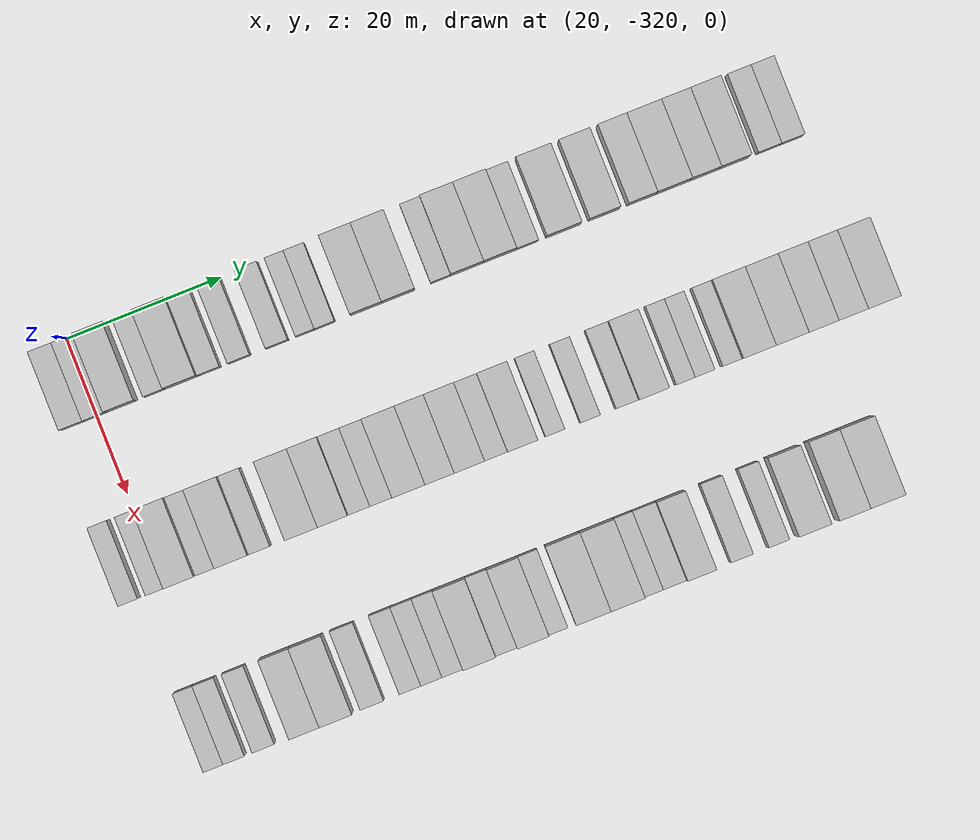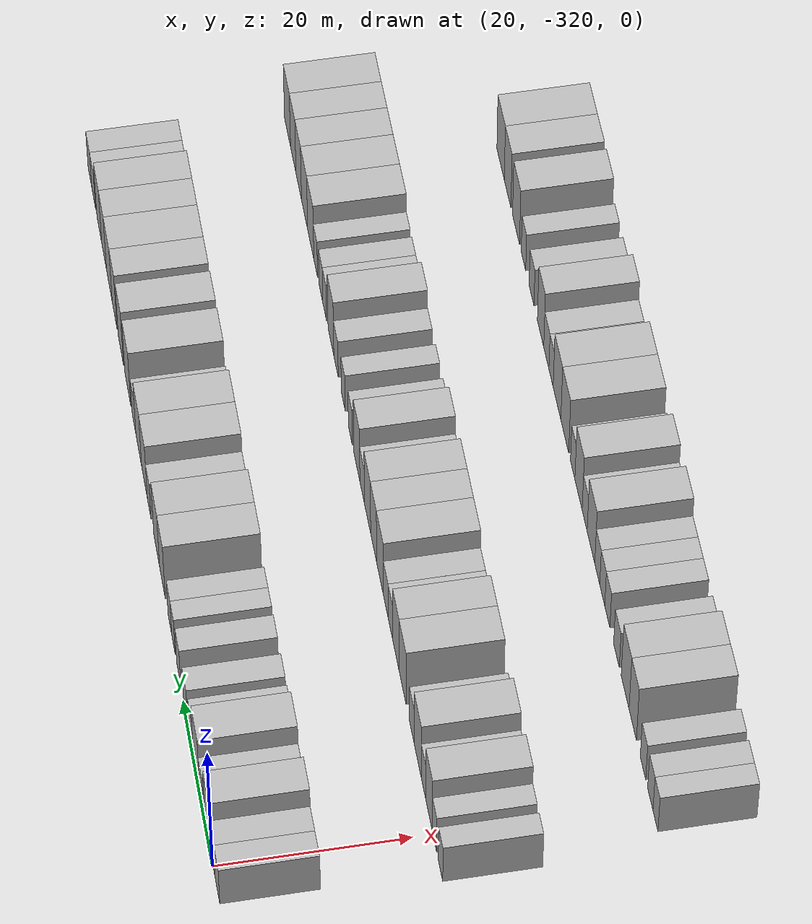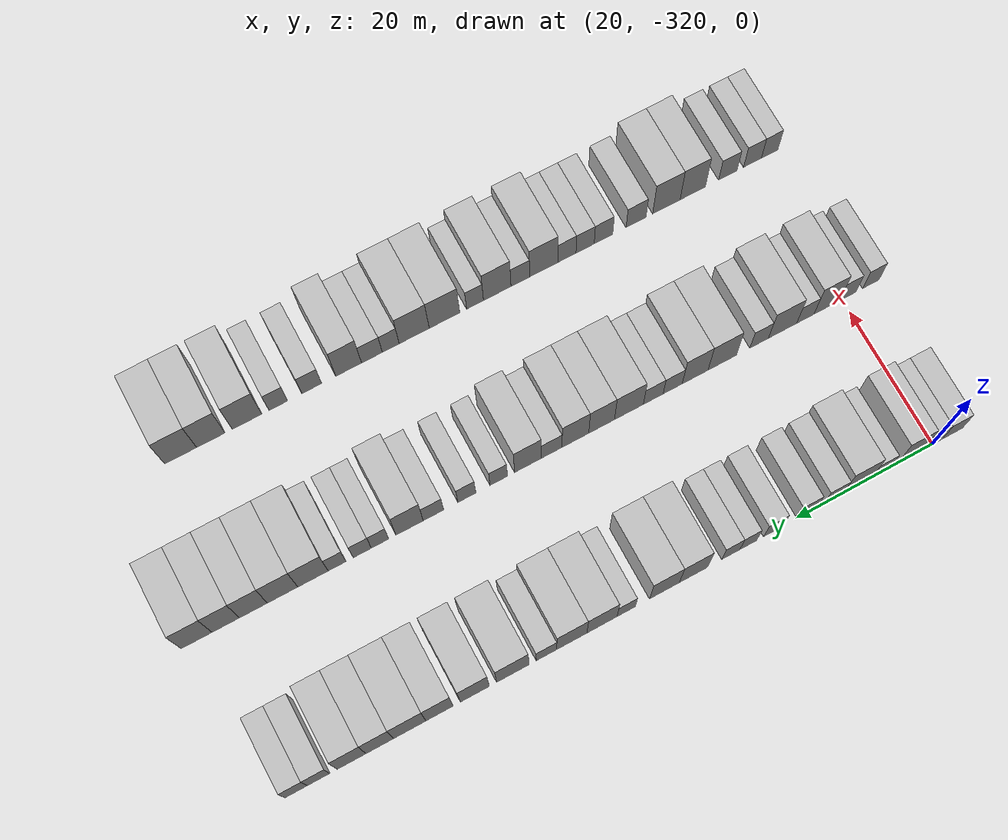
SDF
<sdf version="1.6">
 <world name="default">
  <model name="building_15">
   <static>1</static>
   <pose>25.0000 -322.9379 0 0.000000 0.000000 0.000000</pose>
   <link name="link">
    <pose>0 0 3.00 0 0 0</pose>
    <collision name="collision"><geometry><box><size>10.0000 2.9943 6.0000</size></box></geometry></collision>
    <visual name="visual">
     <cast_shadows>0</cast_shadows>
     <geometry><box><size>10.0000 2.9943 6.0000</size></box></geometry>
     <material>
      <script>
       <uri>model://HANNAS_wall/materials/scripts</uri>
       <uri>model://HANNAS_wall/materials/textures</uri>
       <name>vrc/HANNAS_wall</name>
      </script>
     </material>
    </visual>
   </link>
  </model>
  <model name="building_16">
   <static>1</static>
   <pose>25.0000 -320.0006 0 0.000000 0.000000 0.000000</pose>
   <link name="link">
    <pose>0 0 3.00 0 0 0</pose>
    <collision name="collision"><geometry><box><size>10.0000 2.8804 6.0000</size></box></geometry></collision>
    <visual name="visual">
     <cast_shadows>0</cast_shadows>
     <geometry><box><size>10.0000 2.8804 6.0000</size></box></geometry>
     <material>
      <script>
       <uri>model://HANNAS_wall/materials/scripts</uri>
       <uri>model://HANNAS_wall/materials/textures</uri>
       <name>vrc/HANNAS_wall</name>
      </script>
     </material>
    </visual>
   </link>
  </model>
  <model name="building_17">
   <static>1</static>
   <pose>25.0000 -316.6251 0 0.000000 0.000000 0.000000</pose>
   <link name="link">
    <pose>0 0 4.50 0 0 0</pose>
    <collision name="collision"><geometry><box><size>10.0000 3.8706 9.0000</size></box></geometry></collision>
    <visual name="visual">
     <cast_shadows>0</cast_shadows>
     <geometry><box><size>10.0000 3.8706 9.0000</size></box></geometry>
     <material>
      <script>
       <uri>model://HANNAS_wall/materials/scripts</uri>
       <uri>model://HANNAS_wall/materials/textures</uri>
       <name>vrc/HANNAS_wall</name>
      </script>
     </material>
    </visual>
   </link>
  </model>
  <model name="building_18">
   <static>1</static>
   <pose>25.0000 -312.3613 0 0.000000 0.000000 0.000000</pose>
   <link name="link">
    <pose>0 0 3.00 0 0 0</pose>
    <collision name="collision"><geometry><box><size>10.0000 2.6570 6.0000</size></box></geometry></collision>
    <visual name="visual">
     <cast_shadows>0</cast_shadows>
     <geometry><box><size>10.0000 2.6570 6.0000</size></box></geometry>
     <material>
      <script>
       <uri>model://HANNAS_wall/materials/scripts</uri>
       <uri>model://HANNAS_wall/materials/textures</uri>
       <name>vrc/HANNAS_wall</name>
      </script>
     </material>
    </visual>
   </link>
  </model>
  <model name="building_19">
   <static>1</static>
   <pose>25.0000 -308.9249 0 0.000000 0.000000 0.000000</pose>
   <link name="link">
    <pose>0 0 4.50 0 0 0</pose>
    <collision name="collision"><geometry><box><size>10.0000 4.2157 9.0000</size></box></geometry></collision>
    <visual name="visual">
     <cast_shadows>0</cast_shadows>
     <geometry><box><size>10.0000 4.2157 9.0000</size></box></geometry>
     <material>
      <script>
       <uri>model://HANNAS_wall/materials/scripts</uri>
       <uri>model://HANNAS_wall/materials/textures</uri>
       <name>vrc/HANNAS_wall</name>
      </script>
     </material>
    </visual>
   </link>
  </model>
  <model name="building_20">
   <static>1</static>
   <pose>25.0000 -305.3701 0 0.000000 0.000000 0.000000</pose>
   <link name="link">
    <pose>0 0 3.00 0 0 0</pose>
    <collision name="collision"><geometry><box><size>10.0000 2.8938 6.0000</size></box></geometry></collision>
    <visual name="visual">
     <cast_shadows>0</cast_shadows>
     <geometry><box><size>10.0000 2.8938 6.0000</size></box></geometry>
     <material>
      <script>
       <uri>model://HANNAS_wall/materials/scripts</uri>
       <uri>model://HANNAS_wall/materials/textures</uri>
       <name>vrc/HANNAS_wall</name>
      </script>
     </material>
    </visual>
   </link>
  </model>
  <model name="building_21">
   <static>1</static>
   <pose>25.0000 -301.4968 0 0.000000 0.000000 0.000000</pose>
   <link name="link">
    <pose>0 0 3.00 0 0 0</pose>
    <collision name="collision"><geometry><box><size>10.0000 2.8527 6.0000</size></box></geometry></collision>
    <visual name="visual">
     <cast_shadows>0</cast_shadows>
     <geometry><box><size>10.0000 2.8527 6.0000</size></box></geometry>
     <material>
      <script>
       <uri>model://HANNAS_wall/materials/scripts</uri>
       <uri>model://HANNAS_wall/materials/textures</uri>
       <name>vrc/HANNAS_wall</name>
      </script>
     </material>
    </visual>
   </link>
  </model>
  <model name="building_22">
   <static>1</static>
   <pose>25.0000 -296.6510 0 0.000000 0.000000 0.000000</pose>
   <link name="link">
    <pose>0 0 3.00 0 0 0</pose>
    <collision name="collision"><geometry><box><size>10.0000 2.8390 6.0000</size></box></geometry></collision>
    <visual name="visual">
     <cast_shadows>0</cast_shadows>
     <geometry><box><size>10.0000 2.8390 6.0000</size></box></geometry>
     <material>
      <script>
       <uri>model://HANNAS_wall/materials/scripts</uri>
       <uri>model://HANNAS_wall/materials/textures</uri>
       <name>vrc/HANNAS_wall</name>
      </script>
     </material>
    </visual>
   </link>
  </model>
  <model name="building_23">
   <static>1</static>
   <pose>25.0000 -293.0241 0 0.000000 0.000000 0.000000</pose>
   <link name="link">
    <pose>0 0 3.00 0 0 0</pose>
    <collision name="collision"><geometry><box><size>10.0000 2.4147 6.0000</size></box></geometry></collision>
    <visual name="visual">
     <cast_shadows>0</cast_shadows>
     <geometry><box><size>10.0000 2.4147 6.0000</size></box></geometry>
     <material>
      <script>
       <uri>model://HANNAS_wall/materials/scripts</uri>
       <uri>model://HANNAS_wall/materials/textures</uri>
       <name>vrc/HANNAS_wall</name>
      </script>
     </material>
    </visual>
   </link>
  </model>
  <model name="building_24">
   <static>1</static>
   <pose>25.0000 -290.5243 0 0.000000 0.000000 0.000000</pose>
   <link name="link">
    <pose>0 0 3.00 0 0 0</pose>
    <collision name="collision"><geometry><box><size>10.0000 2.5849 6.0000</size></box></geometry></collision>
    <visual name="visual">
     <cast_shadows>0</cast_shadows>
     <geometry><box><size>10.0000 2.5849 6.0000</size></box></geometry>
     <material>
      <script>
       <uri>model://HANNAS_wall/materials/scripts</uri>
       <uri>model://HANNAS_wall/materials/textures</uri>
       <name>vrc/HANNAS_wall</name>
      </script>
     </material>
    </visual>
   </link>
  </model>
  <model name="building_25">
   <static>1</static>
   <pose>25.0000 -285.2154 0 0.000000 0.000000 0.000000</pose>
   <link name="link">
    <pose>0 0 4.50 0 0 0</pose>
    <collision name="collision"><geometry><box><size>10.0000 4.0328 9.0000</size></box></geometry></collision>
    <visual name="visual">
     <cast_shadows>0</cast_shadows>
     <geometry><box><size>10.0000 4.0328 9.0000</size></box></geometry>
     <material>
      <script>
       <uri>model://HANNAS_wall/materials/scripts</uri>
       <uri>model://HANNAS_wall/materials/textures</uri>
       <name>vrc/HANNAS_wall</name>
      </script>
     </material>
    </visual>
   </link>
  </model>
  <model name="building_26">
   <static>1</static>
   <pose>25.0000 -281.0888 0 0.000000 0.000000 0.000000</pose>
   <link name="link">
    <pose>0 0 4.50 0 0 0</pose>
    <collision name="collision"><geometry><box><size>10.0000 4.2205 9.0000</size></box></geometry></collision>
    <visual name="visual">
     <cast_shadows>0</cast_shadows>
     <geometry><box><size>10.0000 4.2205 9.0000</size></box></geometry>
     <material>
      <script>
       <uri>model://HANNAS_wall/materials/scripts</uri>
       <uri>model://HANNAS_wall/materials/textures</uri>
       <name>vrc/HANNAS_wall</name>
      </script>
     </material>
    </visual>
   </link>
  </model>
  <model name="building_27">
   <static>1</static>
   <pose>25.0000 -275.6913 0 0.000000 0.000000 0.000000</pose>
   <link name="link">
    <pose>0 0 3.00 0 0 0</pose>
    <collision name="collision"><geometry><box><size>10.0000 2.5745 6.0000</size></box></geometry></collision>
    <visual name="visual">
     <cast_shadows>0</cast_shadows>
     <geometry><box><size>10.0000 2.5745 6.0000</size></box></geometry>
     <material>
      <script>
       <uri>model://HANNAS_wall/materials/scripts</uri>
       <uri>model://HANNAS_wall/materials/textures</uri>
       <name>vrc/HANNAS_wall</name>
      </script>
     </material>
    </visual>
   </link>
  </model>
  <model name="building_28">
   <static>1</static>
   <pose>25.0000 -272.3003 0 0.000000 0.000000 0.000000</pose>
   <link name="link">
    <pose>0 0 4.50 0 0 0</pose>
    <collision name="collision"><geometry><box><size>10.0000 4.2075 9.0000</size></box></geometry></collision>
    <visual name="visual">
     <cast_shadows>0</cast_shadows>
     <geometry><box><size>10.0000 4.2075 9.0000</size></box></geometry>
     <material>
      <script>
       <uri>model://HANNAS_wall/materials/scripts</uri>
       <uri>model://HANNAS_wall/materials/textures</uri>
       <name>vrc/HANNAS_wall</name>
      </script>
     </material>
    </visual>
   </link>
  </model>
  <model name="building_29">
   <static>1</static>
   <pose>25.0000 -268.0924 0 0.000000 0.000000 0.000000</pose>
   <link name="link">
    <pose>0 0 4.50 0 0 0</pose>
    <collision name="collision"><geometry><box><size>10.0000 4.2083 9.0000</size></box></geometry></collision>
    <visual name="visual">
     <cast_shadows>0</cast_shadows>
     <geometry><box><size>10.0000 4.2083 9.0000</size></box></geometry>
     <material>
      <script>
       <uri>model://HANNAS_wall/materials/scripts</uri>
       <uri>model://HANNAS_wall/materials/textures</uri>
       <name>vrc/HANNAS_wall</name>
      </script>
     </material>
    </visual>
   </link>
  </model>
  <model name="building_30">
   <static>1</static>
   <pose>25.0000 -264.5760 0 0.000000 0.000000 0.000000</pose>
   <link name="link">
    <pose>0 0 3.00 0 0 0</pose>
    <collision name="collision"><geometry><box><size>10.0000 2.8246 6.0000</size></box></geometry></collision>
    <visual name="visual">
     <cast_shadows>0</cast_shadows>
     <geometry><box><size>10.0000 2.8246 6.0000</size></box></geometry>
     <material>
      <script>
       <uri>model://HANNAS_wall/materials/scripts</uri>
       <uri>model://HANNAS_wall/materials/textures</uri>
       <name>vrc/HANNAS_wall</name>
      </script>
     </material>
    </visual>
   </link>
  </model>
  <model name="building_31">
   <static>1</static>
   <pose>25.0000 -259.9364 0 0.000000 0.000000 0.000000</pose>
   <link name="link">
    <pose>0 0 4.50 0 0 0</pose>
    <collision name="collision"><geometry><box><size>10.0000 4.4545 9.0000</size></box></geometry></collision>
    <visual name="visual">
     <cast_shadows>0</cast_shadows>
     <geometry><box><size>10.0000 4.4545 9.0000</size></box></geometry>
     <material>
      <script>
       <uri>model://HANNAS_wall/materials/scripts</uri>
       <uri>model://HANNAS_wall/materials/textures</uri>
       <name>vrc/HANNAS_wall</name>
      </script>
     </material>
    </visual>
   </link>
  </model>
  <model name="building_32">
   <static>1</static>
   <pose>25.0000 -254.7309 0 0.000000 0.000000 0.000000</pose>
   <link name="link">
    <pose>0 0 4.50 0 0 0</pose>
    <collision name="collision"><geometry><box><size>10.0000 3.9564 9.0000</size></box></geometry></collision>
    <visual name="visual">
     <cast_shadows>0</cast_shadows>
     <geometry><box><size>10.0000 3.9564 9.0000</size></box></geometry>
     <material>
      <script>
       <uri>model://HANNAS_wall/materials/scripts</uri>
       <uri>model://HANNAS_wall/materials/textures</uri>
       <name>vrc/HANNAS_wall</name>
      </script>
     </material>
    </visual>
   </link>
  </model>
  <model name="building_33">
   <static>1</static>
   <pose>25.0000 -249.9148 0 0.000000 0.000000 0.000000</pose>
   <link name="link">
    <pose>0 0 4.50 0 0 0</pose>
    <collision name="collision"><geometry><box><size>10.0000 3.6759 9.0000</size></box></geometry></collision>
    <visual name="visual">
     <cast_shadows>0</cast_shadows>
     <geometry><box><size>10.0000 3.6759 9.0000</size></box></geometry>
     <material>
      <script>
       <uri>model://HANNAS_wall/materials/scripts</uri>
       <uri>model://HANNAS_wall/materials/textures</uri>
       <name>vrc/HANNAS_wall</name>
      </script>
     </material>
    </visual>
   </link>
  </model>
  <model name="building_34">
   <static>1</static>
   <pose>25.0000 -245.8688 0 0.000000 0.000000 0.000000</pose>
   <link name="link">
    <pose>0 0 4.50 0 0 0</pose>
    <collision name="collision"><geometry><box><size>10.0000 4.4161 9.0000</size></box></geometry></collision>
    <visual name="visual">
     <cast_shadows>0</cast_shadows>
     <geometry><box><size>10.0000 4.4161 9.0000</size></box></geometry>
     <material>
      <script>
       <uri>model://HANNAS_wall/materials/scripts</uri>
       <uri>model://HANNAS_wall/materials/textures</uri>
       <name>vrc/HANNAS_wall</name>
      </script>
     </material>
    </visual>
   </link>
  </model>
  <model name="building_35">
   <static>1</static>
   <pose>25.0000 -241.8168 0 0.000000 0.000000 0.000000</pose>
   <link name="link">
    <pose>0 0 4.50 0 0 0</pose>
    <collision name="collision"><geometry><box><size>10.0000 3.6878 9.0000</size></box></geometry></collision>
    <visual name="visual">
     <cast_shadows>0</cast_shadows>
     <geometry><box><size>10.0000 3.6878 9.0000</size></box></geometry>
     <material>
      <script>
       <uri>model://HANNAS_wall/materials/scripts</uri>
       <uri>model://HANNAS_wall/materials/textures</uri>
       <name>vrc/HANNAS_wall</name>
      </script>
     </material>
    </visual>
   </link>
  </model>
  <model name="building_36">
   <static>1</static>
   <pose>25.0000 -238.0493 0 0.000000 0.000000 0.000000</pose>
   <link name="link">
    <pose>0 0 4.50 0 0 0</pose>
    <collision name="collision"><geometry><box><size>10.0000 3.8472 9.0000</size></box></geometry></collision>
    <visual name="visual">
     <cast_shadows>0</cast_shadows>
     <geometry><box><size>10.0000 3.8472 9.0000</size></box></geometry>
     <material>
      <script>
       <uri>model://HANNAS_wall/materials/scripts</uri>
       <uri>model://HANNAS_wall/materials/textures</uri>
       <name>vrc/HANNAS_wall</name>
      </script>
     </material>
    </visual>
   </link>
  </model>
  <model name="building_37">
   <static>1</static>
   <pose>25.0000 -233.6290 0 0.000000 0.000000 0.000000</pose>
   <link name="link">
    <pose>0 0 3.00 0 0 0</pose>
    <collision name="collision"><geometry><box><size>10.0000 2.9935 6.0000</size></box></geometry></collision>
    <visual name="visual">
     <cast_shadows>0</cast_shadows>
     <geometry><box><size>10.0000 2.9935 6.0000</size></box></geometry>
     <material>
      <script>
       <uri>model://HANNAS_wall/materials/scripts</uri>
       <uri>model://HANNAS_wall/materials/textures</uri>
       <name>vrc/HANNAS_wall</name>
      </script>
     </material>
    </visual>
   </link>
  </model>
  <model name="building_38">
   <static>1</static>
   <pose>25.0000 -230.6580 0 0.000000 0.000000 0.000000</pose>
   <link name="link">
    <pose>0 0 3.00 0 0 0</pose>
    <collision name="collision"><geometry><box><size>10.0000 2.9485 6.0000</size></box></geometry></collision>
    <visual name="visual">
     <cast_shadows>0</cast_shadows>
     <geometry><box><size>10.0000 2.9485 6.0000</size></box></geometry>
     <material>
      <script>
       <uri>model://HANNAS_wall/materials/scripts</uri>
       <uri>model://HANNAS_wall/materials/textures</uri>
       <name>vrc/HANNAS_wall</name>
      </script>
     </material>
    </visual>
   </link>
  </model>
  <model name="building_199">
   <static>1</static>
   <pose>47.0000 -324.3267 0 0.000000 0.000000 0.000000</pose>
   <link name="link">
    <pose>0 0 3.00 0 0 0</pose>
    <collision name="collision"><geometry><box><size>10.0000 2.4897 6.0000</size></box></geometry></collision>
    <visual name="visual">
     <cast_shadows>0</cast_shadows>
     <geometry><box><size>10.0000 2.4897 6.0000</size></box></geometry>
     <material>
      <script>
       <uri>model://HANNAS_wall/materials/scripts</uri>
       <uri>model://HANNAS_wall/materials/textures</uri>
       <name>vrc/HANNAS_wall</name>
      </script>
     </material>
    </visual>
   </link>
  </model>
  <model name="building_200">
   <static>1</static>
   <pose>47.0000 -320.8502 0 0.000000 0.000000 0.000000</pose>
   <link name="link">
    <pose>0 0 3.00 0 0 0</pose>
    <collision name="collision"><geometry><box><size>10.0000 2.4633 6.0000</size></box></geometry></collision>
    <visual name="visual">
     <cast_shadows>0</cast_shadows>
     <geometry><box><size>10.0000 2.4633 6.0000</size></box></geometry>
     <material>
      <script>
       <uri>model://HANNAS_wall/materials/scripts</uri>
       <uri>model://HANNAS_wall/materials/textures</uri>
       <name>vrc/HANNAS_wall</name>
      </script>
     </material>
    </visual>
   </link>
  </model>
  <model name="building_201">
   <static>1</static>
   <pose>47.0000 -317.6871 0 0.000000 0.000000 0.000000</pose>
   <link name="link">
    <pose>0 0 4.50 0 0 0</pose>
    <collision name="collision"><geometry><box><size>10.0000 3.8630 9.0000</size></box></geometry></collision>
    <visual name="visual">
     <cast_shadows>0</cast_shadows>
     <geometry><box><size>10.0000 3.8630 9.0000</size></box></geometry>
     <material>
      <script>
       <uri>model://HANNAS_wall/materials/scripts</uri>
       <uri>model://HANNAS_wall/materials/textures</uri>
       <name>vrc/HANNAS_wall</name>
      </script>
     </material>
    </visual>
   </link>
  </model>
  <model name="building_202">
   <static>1</static>
   <pose>47.0000 -314.4593 0 0.000000 0.000000 0.000000</pose>
   <link name="link">
    <pose>0 0 3.00 0 0 0</pose>
    <collision name="collision"><geometry><box><size>10.0000 2.5925 6.0000</size></box></geometry></collision>
    <visual name="visual">
     <cast_shadows>0</cast_shadows>
     <geometry><box><size>10.0000 2.5925 6.0000</size></box></geometry>
     <material>
      <script>
       <uri>model://HANNAS_wall/materials/scripts</uri>
       <uri>model://HANNAS_wall/materials/textures</uri>
       <name>vrc/HANNAS_wall</name>
      </script>
     </material>
    </visual>
   </link>
  </model>
  <model name="building_203">
   <static>1</static>
   <pose>47.0000 -311.0527 0 0.000000 0.000000 0.000000</pose>
   <link name="link">
    <pose>0 0 4.50 0 0 0</pose>
    <collision name="collision"><geometry><box><size>10.0000 4.2207 9.0000</size></box></geometry></collision>
    <visual name="visual">
     <cast_shadows>0</cast_shadows>
     <geometry><box><size>10.0000 4.2207 9.0000</size></box></geometry>
     <material>
      <script>
       <uri>model://HANNAS_wall/materials/scripts</uri>
       <uri>model://HANNAS_wall/materials/textures</uri>
       <name>vrc/HANNAS_wall</name>
      </script>
     </material>
    </visual>
   </link>
  </model>
  <model name="building_204">
   <static>1</static>
   <pose>47.0000 -307.5735 0 0.000000 0.000000 0.000000</pose>
   <link name="link">
    <pose>0 0 3.00 0 0 0</pose>
    <collision name="collision"><geometry><box><size>10.0000 2.7377 6.0000</size></box></geometry></collision>
    <visual name="visual">
     <cast_shadows>0</cast_shadows>
     <geometry><box><size>10.0000 2.7377 6.0000</size></box></geometry>
     <material>
      <script>
       <uri>model://HANNAS_wall/materials/scripts</uri>
       <uri>model://HANNAS_wall/materials/textures</uri>
       <name>vrc/HANNAS_wall</name>
      </script>
     </material>
    </visual>
   </link>
  </model>
  <model name="building_205">
   <static>1</static>
   <pose>47.0000 -302.1102 0 0.000000 0.000000 0.000000</pose>
   <link name="link">
    <pose>0 0 4.50 0 0 0</pose>
    <collision name="collision"><geometry><box><size>10.0000 4.1889 9.0000</size></box></geometry></collision>
    <visual name="visual">
     <cast_shadows>0</cast_shadows>
     <geometry><box><size>10.0000 4.1889 9.0000</size></box></geometry>
     <material>
      <script>
       <uri>model://HANNAS_wall/materials/scripts</uri>
       <uri>model://HANNAS_wall/materials/textures</uri>
       <name>vrc/HANNAS_wall</name>
      </script>
     </material>
    </visual>
   </link>
  </model>
  <model name="building_206">
   <static>1</static>
   <pose>47.0000 -298.1185 0 0.000000 0.000000 0.000000</pose>
   <link name="link">
    <pose>0 0 4.50 0 0 0</pose>
    <collision name="collision"><geometry><box><size>10.0000 3.7946 9.0000</size></box></geometry></collision>
    <visual name="visual">
     <cast_shadows>0</cast_shadows>
     <geometry><box><size>10.0000 3.7946 9.0000</size></box></geometry>
     <material>
      <script>
       <uri>model://HANNAS_wall/materials/scripts</uri>
       <uri>model://HANNAS_wall/materials/textures</uri>
       <name>vrc/HANNAS_wall</name>
      </script>
     </material>
    </visual>
   </link>
  </model>
  <model name="building_207">
   <static>1</static>
   <pose>47.0000 -294.8281 0 0.000000 0.000000 0.000000</pose>
   <link name="link">
    <pose>0 0 3.00 0 0 0</pose>
    <collision name="collision"><geometry><box><size>10.0000 2.7862 6.0000</size></box></geometry></collision>
    <visual name="visual">
     <cast_shadows>0</cast_shadows>
     <geometry><box><size>10.0000 2.7862 6.0000</size></box></geometry>
     <material>
      <script>
       <uri>model://HANNAS_wall/materials/scripts</uri>
       <uri>model://HANNAS_wall/materials/textures</uri>
       <name>vrc/HANNAS_wall</name>
      </script>
     </material>
    </visual>
   </link>
  </model>
  <model name="building_208">
   <static>1</static>
   <pose>47.0000 -291.9982 0 0.000000 0.000000 0.000000</pose>
   <link name="link">
    <pose>0 0 3.00 0 0 0</pose>
    <collision name="collision"><geometry><box><size>10.0000 2.8737 6.0000</size></box></geometry></collision>
    <visual name="visual">
     <cast_shadows>0</cast_shadows>
     <geometry><box><size>10.0000 2.8737 6.0000</size></box></geometry>
     <material>
      <script>
       <uri>model://HANNAS_wall/materials/scripts</uri>
       <uri>model://HANNAS_wall/materials/textures</uri>
       <name>vrc/HANNAS_wall</name>
      </script>
     </material>
    </visual>
   </link>
  </model>
  <model name="building_209">
   <static>1</static>
   <pose>47.0000 -288.4626 0 0.000000 0.000000 0.000000</pose>
   <link name="link">
    <pose>0 0 4.50 0 0 0</pose>
    <collision name="collision"><geometry><box><size>10.0000 4.1975 9.0000</size></box></geometry></collision>
    <visual name="visual">
     <cast_shadows>0</cast_shadows>
     <geometry><box><size>10.0000 4.1975 9.0000</size></box></geometry>
     <material>
      <script>
       <uri>model://HANNAS_wall/materials/scripts</uri>
       <uri>model://HANNAS_wall/materials/textures</uri>
       <name>vrc/HANNAS_wall</name>
      </script>
     </material>
    </visual>
   </link>
  </model>
  <model name="building_210">
   <static>1</static>
   <pose>47.0000 -284.5081 0 0.000000 0.000000 0.000000</pose>
   <link name="link">
    <pose>0 0 4.50 0 0 0</pose>
    <collision name="collision"><geometry><box><size>10.0000 3.7114 9.0000</size></box></geometry></collision>
    <visual name="visual">
     <cast_shadows>0</cast_shadows>
     <geometry><box><size>10.0000 3.7114 9.0000</size></box></geometry>
     <material>
      <script>
       <uri>model://HANNAS_wall/materials/scripts</uri>
       <uri>model://HANNAS_wall/materials/textures</uri>
       <name>vrc/HANNAS_wall</name>
      </script>
     </material>
    </visual>
   </link>
  </model>
  <model name="building_211">
   <static>1</static>
   <pose>47.0000 -280.7209 0 0.000000 0.000000 0.000000</pose>
   <link name="link">
    <pose>0 0 4.50 0 0 0</pose>
    <collision name="collision"><geometry><box><size>10.0000 3.8630 9.0000</size></box></geometry></collision>
    <visual name="visual">
     <cast_shadows>0</cast_shadows>
     <geometry><box><size>10.0000 3.8630 9.0000</size></box></geometry>
     <material>
      <script>
       <uri>model://HANNAS_wall/materials/scripts</uri>
       <uri>model://HANNAS_wall/materials/textures</uri>
       <name>vrc/HANNAS_wall</name>
      </script>
     </material>
    </visual>
   </link>
  </model>
  <model name="building_212">
   <static>1</static>
   <pose>47.0000 -277.3342 0 0.000000 0.000000 0.000000</pose>
   <link name="link">
    <pose>0 0 3.00 0 0 0</pose>
    <collision name="collision"><geometry><box><size>10.0000 2.9104 6.0000</size></box></geometry></collision>
    <visual name="visual">
     <cast_shadows>0</cast_shadows>
     <geometry><box><size>10.0000 2.9104 6.0000</size></box></geometry>
     <material>
      <script>
       <uri>model://HANNAS_wall/materials/scripts</uri>
       <uri>model://HANNAS_wall/materials/textures</uri>
       <name>vrc/HANNAS_wall</name>
      </script>
     </material>
    </visual>
   </link>
  </model>
  <model name="building_213">
   <static>1</static>
   <pose>47.0000 -273.9551 0 0.000000 0.000000 0.000000</pose>
   <link name="link">
    <pose>0 0 4.50 0 0 0</pose>
    <collision name="collision"><geometry><box><size>10.0000 3.8478 9.0000</size></box></geometry></collision>
    <visual name="visual">
     <cast_shadows>0</cast_shadows>
     <geometry><box><size>10.0000 3.8478 9.0000</size></box></geometry>
     <material>
      <script>
       <uri>model://HANNAS_wall/materials/scripts</uri>
       <uri>model://HANNAS_wall/materials/textures</uri>
       <name>vrc/HANNAS_wall</name>
      </script>
     </material>
    </visual>
   </link>
  </model>
  <model name="building_214">
   <static>1</static>
   <pose>47.0000 -269.7923 0 0.000000 0.000000 0.000000</pose>
   <link name="link">
    <pose>0 0 3.00 0 0 0</pose>
    <collision name="collision"><geometry><box><size>10.0000 2.4778 6.0000</size></box></geometry></collision>
    <visual name="visual">
     <cast_shadows>0</cast_shadows>
     <geometry><box><size>10.0000 2.4778 6.0000</size></box></geometry>
     <material>
      <script>
       <uri>model://HANNAS_wall/materials/scripts</uri>
       <uri>model://HANNAS_wall/materials/textures</uri>
       <name>vrc/HANNAS_wall</name>
      </script>
     </material>
    </visual>
   </link>
  </model>
  <model name="building_215">
   <static>1</static>
   <pose>47.0000 -265.2839 0 0.000000 0.000000 0.000000</pose>
   <link name="link">
    <pose>0 0 3.00 0 0 0</pose>
    <collision name="collision"><geometry><box><size>10.0000 2.5388 6.0000</size></box></geometry></collision>
    <visual name="visual">
     <cast_shadows>0</cast_shadows>
     <geometry><box><size>10.0000 2.5388 6.0000</size></box></geometry>
     <material>
      <script>
       <uri>model://HANNAS_wall/materials/scripts</uri>
       <uri>model://HANNAS_wall/materials/textures</uri>
       <name>vrc/HANNAS_wall</name>
      </script>
     </material>
    </visual>
   </link>
  </model>
  <model name="building_216">
   <static>1</static>
   <pose>47.0000 -260.5830 0 0.000000 0.000000 0.000000</pose>
   <link name="link">
    <pose>0 0 3.00 0 0 0</pose>
    <collision name="collision"><geometry><box><size>10.0000 2.8631 6.0000</size></box></geometry></collision>
    <visual name="visual">
     <cast_shadows>0</cast_shadows>
     <geometry><box><size>10.0000 2.8631 6.0000</size></box></geometry>
     <material>
      <script>
       <uri>model://HANNAS_wall/materials/scripts</uri>
       <uri>model://HANNAS_wall/materials/textures</uri>
       <name>vrc/HANNAS_wall</name>
      </script>
     </material>
    </visual>
   </link>
  </model>
  <model name="building_217">
   <static>1</static>
   <pose>47.0000 -257.2432 0 0.000000 0.000000 0.000000</pose>
   <link name="link">
    <pose>0 0 4.50 0 0 0</pose>
    <collision name="collision"><geometry><box><size>10.0000 3.8165 9.0000</size></box></geometry></collision>
    <visual name="visual">
     <cast_shadows>0</cast_shadows>
     <geometry><box><size>10.0000 3.8165 9.0000</size></box></geometry>
     <material>
      <script>
       <uri>model://HANNAS_wall/materials/scripts</uri>
       <uri>model://HANNAS_wall/materials/textures</uri>
       <name>vrc/HANNAS_wall</name>
      </script>
     </material>
    </visual>
   </link>
  </model>
  <model name="building_218">
   <static>1</static>
   <pose>47.0000 -253.1270 0 0.000000 0.000000 0.000000</pose>
   <link name="link">
    <pose>0 0 3.00 0 0 0</pose>
    <collision name="collision"><geometry><box><size>10.0000 2.4160 6.0000</size></box></geometry></collision>
    <visual name="visual">
     <cast_shadows>0</cast_shadows>
     <geometry><box><size>10.0000 2.4160 6.0000</size></box></geometry>
     <material>
      <script>
       <uri>model://HANNAS_wall/materials/scripts</uri>
       <uri>model://HANNAS_wall/materials/textures</uri>
       <name>vrc/HANNAS_wall</name>
      </script>
     </material>
    </visual>
   </link>
  </model>
  <model name="building_219">
   <static>1</static>
   <pose>47.0000 -250.6631 0 0.000000 0.000000 0.000000</pose>
   <link name="link">
    <pose>0 0 3.00 0 0 0</pose>
    <collision name="collision"><geometry><box><size>10.0000 2.5119 6.0000</size></box></geometry></collision>
    <visual name="visual">
     <cast_shadows>0</cast_shadows>
     <geometry><box><size>10.0000 2.5119 6.0000</size></box></geometry>
     <material>
      <script>
       <uri>model://HANNAS_wall/materials/scripts</uri>
       <uri>model://HANNAS_wall/materials/textures</uri>
       <name>vrc/HANNAS_wall</name>
      </script>
     </material>
    </visual>
   </link>
  </model>
  <model name="building_220">
   <static>1</static>
   <pose>47.0000 -247.1761 0 0.000000 0.000000 0.000000</pose>
   <link name="link">
    <pose>0 0 3.00 0 0 0</pose>
    <collision name="collision"><geometry><box><size>10.0000 2.4620 6.0000</size></box></geometry></collision>
    <visual name="visual">
     <cast_shadows>0</cast_shadows>
     <geometry><box><size>10.0000 2.4620 6.0000</size></box></geometry>
     <material>
      <script>
       <uri>model://HANNAS_wall/materials/scripts</uri>
       <uri>model://HANNAS_wall/materials/textures</uri>
       <name>vrc/HANNAS_wall</name>
      </script>
     </material>
    </visual>
   </link>
  </model>
  <model name="building_221">
   <static>1</static>
   <pose>47.0000 -243.8594 0 0.000000 0.000000 0.000000</pose>
   <link name="link">
    <pose>0 0 4.50 0 0 0</pose>
    <collision name="collision"><geometry><box><size>10.0000 4.1714 9.0000</size></box></geometry></collision>
    <visual name="visual">
     <cast_shadows>0</cast_shadows>
     <geometry><box><size>10.0000 4.1714 9.0000</size></box></geometry>
     <material>
      <script>
       <uri>model://HANNAS_wall/materials/scripts</uri>
       <uri>model://HANNAS_wall/materials/textures</uri>
       <name>vrc/HANNAS_wall</name>
      </script>
     </material>
    </visual>
   </link>
  </model>
  <model name="building_222">
   <static>1</static>
   <pose>47.0000 -239.6932 0 0.000000 0.000000 0.000000</pose>
   <link name="link">
    <pose>0 0 4.50 0 0 0</pose>
    <collision name="collision"><geometry><box><size>10.0000 4.1609 9.0000</size></box></geometry></collision>
    <visual name="visual">
     <cast_shadows>0</cast_shadows>
     <geometry><box><size>10.0000 4.1609 9.0000</size></box></geometry>
     <material>
      <script>
       <uri>model://HANNAS_wall/materials/scripts</uri>
       <uri>model://HANNAS_wall/materials/textures</uri>
       <name>vrc/HANNAS_wall</name>
      </script>
     </material>
    </visual>
   </link>
  </model>
  <model name="building_223">
   <static>1</static>
   <pose>47.0000 -235.7172 0 0.000000 0.000000 0.000000</pose>
   <link name="link">
    <pose>0 0 4.50 0 0 0</pose>
    <collision name="collision"><geometry><box><size>10.0000 3.7911 9.0000</size></box></geometry></collision>
    <visual name="visual">
     <cast_shadows>0</cast_shadows>
     <geometry><box><size>10.0000 3.7911 9.0000</size></box></geometry>
     <material>
      <script>
       <uri>model://HANNAS_wall/materials/scripts</uri>
       <uri>model://HANNAS_wall/materials/textures</uri>
       <name>vrc/HANNAS_wall</name>
      </script>
     </material>
    </visual>
   </link>
  </model>
  <model name="building_224">
   <static>1</static>
   <pose>47.0000 -231.9564 0 0.000000 0.000000 0.000000</pose>
   <link name="link">
    <pose>0 0 4.50 0 0 0</pose>
    <collision name="collision"><geometry><box><size>10.0000 3.7305 9.0000</size></box></geometry></collision>
    <visual name="visual">
     <cast_shadows>0</cast_shadows>
     <geometry><box><size>10.0000 3.7305 9.0000</size></box></geometry>
     <material>
      <script>
       <uri>model://HANNAS_wall/materials/scripts</uri>
       <uri>model://HANNAS_wall/materials/textures</uri>
       <name>vrc/HANNAS_wall</name>
      </script>
     </material>
    </visual>
   </link>
  </model>
  <model name="building_225">
   <static>1</static>
   <pose>47.0000 -228.0120 0 0.000000 0.000000 0.000000</pose>
   <link name="link">
    <pose>0 0 4.50 0 0 0</pose>
    <collision name="collision"><geometry><box><size>10.0000 4.1583 9.0000</size></box></geometry></collision>
    <visual name="visual">
     <cast_shadows>0</cast_shadows>
     <geometry><box><size>10.0000 4.1583 9.0000</size></box></geometry>
     <material>
      <script>
       <uri>model://HANNAS_wall/materials/scripts</uri>
       <uri>model://HANNAS_wall/materials/textures</uri>
       <name>vrc/HANNAS_wall</name>
      </script>
     </material>
    </visual>
   </link>
  </model>
  <model name="building_381">
   <static>1</static>
   <pose>69.0000 -322.1657 0 0.000000 0.000000 0.000000</pose>
   <link name="link">
    <pose>0 0 3.00 0 0 0</pose>
    <collision name="collision"><geometry><box><size>10.0000 2.5222 6.0000</size></box></geometry></collision>
    <visual name="visual">
     <cast_shadows>0</cast_shadows>
     <geometry><box><size>10.0000 2.5222 6.0000</size></box></geometry>
     <material>
      <script>
       <uri>model://HANNAS_wall/materials/scripts</uri>
       <uri>model://HANNAS_wall/materials/textures</uri>
       <name>vrc/HANNAS_wall</name>
      </script>
     </material>
    </visual>
   </link>
  </model>
  <model name="building_382">
   <static>1</static>
   <pose>69.0000 -319.5432 0 0.000000 0.000000 0.000000</pose>
   <link name="link">
    <pose>0 0 3.00 0 0 0</pose>
    <collision name="collision"><geometry><box><size>10.0000 2.7229 6.0000</size></box></geometry></collision>
    <visual name="visual">
     <cast_shadows>0</cast_shadows>
     <geometry><box><size>10.0000 2.7229 6.0000</size></box></geometry>
     <material>
      <script>
       <uri>model://HANNAS_wall/materials/scripts</uri>
       <uri>model://HANNAS_wall/materials/textures</uri>
       <name>vrc/HANNAS_wall</name>
      </script>
     </material>
    </visual>
   </link>
  </model>
  <model name="building_383">
   <static>1</static>
   <pose>69.0000 -315.7801 0 0.000000 0.000000 0.000000</pose>
   <link name="link">
    <pose>0 0 3.00 0 0 0</pose>
    <collision name="collision"><geometry><box><size>10.0000 2.8032 6.0000</size></box></geometry></collision>
    <visual name="visual">
     <cast_shadows>0</cast_shadows>
     <geometry><box><size>10.0000 2.8032 6.0000</size></box></geometry>
     <material>
      <script>
       <uri>model://HANNAS_wall/materials/scripts</uri>
       <uri>model://HANNAS_wall/materials/textures</uri>
       <name>vrc/HANNAS_wall</name>
      </script>
     </material>
    </visual>
   </link>
  </model>
  <model name="building_384">
   <static>1</static>
   <pose>69.0000 -310.4609 0 0.000000 0.000000 0.000000</pose>
   <link name="link">
    <pose>0 0 4.50 0 0 0</pose>
    <collision name="collision"><geometry><box><size>10.0000 3.8353 9.0000</size></box></geometry></collision>
    <visual name="visual">
     <cast_shadows>0</cast_shadows>
     <geometry><box><size>10.0000 3.8353 9.0000</size></box></geometry>
     <material>
      <script>
       <uri>model://HANNAS_wall/materials/scripts</uri>
       <uri>model://HANNAS_wall/materials/textures</uri>
       <name>vrc/HANNAS_wall</name>
      </script>
     </material>
    </visual>
   </link>
  </model>
  <model name="building_385">
   <static>1</static>
   <pose>69.0000 -306.4733 0 0.000000 0.000000 0.000000</pose>
   <link name="link">
    <pose>0 0 4.50 0 0 0</pose>
    <collision name="collision"><geometry><box><size>10.0000 4.1400 9.0000</size></box></geometry></collision>
    <visual name="visual">
     <cast_shadows>0</cast_shadows>
     <geometry><box><size>10.0000 4.1400 9.0000</size></box></geometry>
     <material>
      <script>
       <uri>model://HANNAS_wall/materials/scripts</uri>
       <uri>model://HANNAS_wall/materials/textures</uri>
       <name>vrc/HANNAS_wall</name>
      </script>
     </material>
    </visual>
   </link>
  </model>
  <model name="building_386">
   <static>1</static>
   <pose>69.0000 -301.9101 0 0.000000 0.000000 0.000000</pose>
   <link name="link">
    <pose>0 0 3.00 0 0 0</pose>
    <collision name="collision"><geometry><box><size>10.0000 2.9863 6.0000</size></box></geometry></collision>
    <visual name="visual">
     <cast_shadows>0</cast_shadows>
     <geometry><box><size>10.0000 2.9863 6.0000</size></box></geometry>
     <material>
      <script>
       <uri>model://HANNAS_wall/materials/scripts</uri>
       <uri>model://HANNAS_wall/materials/textures</uri>
       <name>vrc/HANNAS_wall</name>
      </script>
     </material>
    </visual>
   </link>
  </model>
  <model name="building_387">
   <static>1</static>
   <pose>69.0000 -297.0392 0 0.000000 0.000000 0.000000</pose>
   <link name="link">
    <pose>0 0 3.00 0 0 0</pose>
    <collision name="collision"><geometry><box><size>10.0000 2.7554 6.0000</size></box></geometry></collision>
    <visual name="visual">
     <cast_shadows>0</cast_shadows>
     <geometry><box><size>10.0000 2.7554 6.0000</size></box></geometry>
     <material>
      <script>
       <uri>model://HANNAS_wall/materials/scripts</uri>
       <uri>model://HANNAS_wall/materials/textures</uri>
       <name>vrc/HANNAS_wall</name>
      </script>
     </material>
    </visual>
   </link>
  </model>
  <model name="building_388">
   <static>1</static>
   <pose>69.0000 -294.3094 0 0.000000 0.000000 0.000000</pose>
   <link name="link">
    <pose>0 0 3.00 0 0 0</pose>
    <collision name="collision"><geometry><box><size>10.0000 2.7043 6.0000</size></box></geometry></collision>
    <visual name="visual">
     <cast_shadows>0</cast_shadows>
     <geometry><box><size>10.0000 2.7043 6.0000</size></box></geometry>
     <material>
      <script>
       <uri>model://HANNAS_wall/materials/scripts</uri>
       <uri>model://HANNAS_wall/materials/textures</uri>
       <name>vrc/HANNAS_wall</name>
      </script>
     </material>
    </visual>
   </link>
  </model>
  <model name="building_389">
   <static>1</static>
   <pose>69.0000 -291.6194 0 0.000000 0.000000 0.000000</pose>
   <link name="link">
    <pose>0 0 3.00 0 0 0</pose>
    <collision name="collision"><geometry><box><size>10.0000 2.6757 6.0000</size></box></geometry></collision>
    <visual name="visual">
     <cast_shadows>0</cast_shadows>
     <geometry><box><size>10.0000 2.6757 6.0000</size></box></geometry>
     <material>
      <script>
       <uri>model://HANNAS_wall/materials/scripts</uri>
       <uri>model://HANNAS_wall/materials/textures</uri>
       <name>vrc/HANNAS_wall</name>
      </script>
     </material>
    </visual>
   </link>
  </model>
  <model name="building_390">
   <static>1</static>
   <pose>69.0000 -288.2003 0 0.000000 0.000000 0.000000</pose>
   <link name="link">
    <pose>0 0 4.50 0 0 0</pose>
    <collision name="collision"><geometry><box><size>10.0000 4.1625 9.0000</size></box></geometry></collision>
    <visual name="visual">
     <cast_shadows>0</cast_shadows>
     <geometry><box><size>10.0000 4.1625 9.0000</size></box></geometry>
     <material>
      <script>
       <uri>model://HANNAS_wall/materials/scripts</uri>
       <uri>model://HANNAS_wall/materials/textures</uri>
       <name>vrc/HANNAS_wall</name>
      </script>
     </material>
    </visual>
   </link>
  </model>
  <model name="building_391">
   <static>1</static>
   <pose>69.0000 -284.7448 0 0.000000 0.000000 0.000000</pose>
   <link name="link">
    <pose>0 0 3.00 0 0 0</pose>
    <collision name="collision"><geometry><box><size>10.0000 2.7486 6.0000</size></box></geometry></collision>
    <visual name="visual">
     <cast_shadows>0</cast_shadows>
     <geometry><box><size>10.0000 2.7486 6.0000</size></box></geometry>
     <material>
      <script>
       <uri>model://HANNAS_wall/materials/scripts</uri>
       <uri>model://HANNAS_wall/materials/textures</uri>
       <name>vrc/HANNAS_wall</name>
      </script>
     </material>
    </visual>
   </link>
  </model>
  <model name="building_392">
   <static>1</static>
   <pose>69.0000 -281.3604 0 0.000000 0.000000 0.000000</pose>
   <link name="link">
    <pose>0 0 4.50 0 0 0</pose>
    <collision name="collision"><geometry><box><size>10.0000 4.0202 9.0000</size></box></geometry></collision>
    <visual name="visual">
     <cast_shadows>0</cast_shadows>
     <geometry><box><size>10.0000 4.0202 9.0000</size></box></geometry>
     <material>
      <script>
       <uri>model://HANNAS_wall/materials/scripts</uri>
       <uri>model://HANNAS_wall/materials/textures</uri>
       <name>vrc/HANNAS_wall</name>
      </script>
     </material>
    </visual>
   </link>
  </model>
  <model name="building_393">
   <static>1</static>
   <pose>69.0000 -278.1222 0 0.000000 0.000000 0.000000</pose>
   <link name="link">
    <pose>0 0 3.00 0 0 0</pose>
    <collision name="collision"><geometry><box><size>10.0000 2.4562 6.0000</size></box></geometry></collision>
    <visual name="visual">
     <cast_shadows>0</cast_shadows>
     <geometry><box><size>10.0000 2.4562 6.0000</size></box></geometry>
     <material>
      <script>
       <uri>model://HANNAS_wall/materials/scripts</uri>
       <uri>model://HANNAS_wall/materials/textures</uri>
       <name>vrc/HANNAS_wall</name>
      </script>
     </material>
    </visual>
   </link>
  </model>
  <model name="building_394">
   <static>1</static>
   <pose>69.0000 -273.6819 0 0.000000 0.000000 0.000000</pose>
   <link name="link">
    <pose>0 0 4.50 0 0 0</pose>
    <collision name="collision"><geometry><box><size>10.0000 4.4244 9.0000</size></box></geometry></collision>
    <visual name="visual">
     <cast_shadows>0</cast_shadows>
     <geometry><box><size>10.0000 4.4244 9.0000</size></box></geometry>
     <material>
      <script>
       <uri>model://HANNAS_wall/materials/scripts</uri>
       <uri>model://HANNAS_wall/materials/textures</uri>
       <name>vrc/HANNAS_wall</name>
      </script>
     </material>
    </visual>
   </link>
  </model>
  <model name="building_395">
   <static>1</static>
   <pose>69.0000 -269.3010 0 0.000000 0.000000 0.000000</pose>
   <link name="link">
    <pose>0 0 4.50 0 0 0</pose>
    <collision name="collision"><geometry><box><size>10.0000 4.3376 9.0000</size></box></geometry></collision>
    <visual name="visual">
     <cast_shadows>0</cast_shadows>
     <geometry><box><size>10.0000 4.3376 9.0000</size></box></geometry>
     <material>
      <script>
       <uri>model://HANNAS_wall/materials/scripts</uri>
       <uri>model://HANNAS_wall/materials/textures</uri>
       <name>vrc/HANNAS_wall</name>
      </script>
     </material>
    </visual>
   </link>
  </model>
  <model name="building_396">
   <static>1</static>
   <pose>69.0000 -265.9233 0 0.000000 0.000000 0.000000</pose>
   <link name="link">
    <pose>0 0 3.00 0 0 0</pose>
    <collision name="collision"><geometry><box><size>10.0000 2.4178 6.0000</size></box></geometry></collision>
    <visual name="visual">
     <cast_shadows>0</cast_shadows>
     <geometry><box><size>10.0000 2.4178 6.0000</size></box></geometry>
     <material>
      <script>
       <uri>model://HANNAS_wall/materials/scripts</uri>
       <uri>model://HANNAS_wall/materials/textures</uri>
       <name>vrc/HANNAS_wall</name>
      </script>
     </material>
    </visual>
   </link>
  </model>
  <model name="building_397">
   <static>1</static>
   <pose>69.0000 -263.2274 0 0.000000 0.000000 0.000000</pose>
   <link name="link">
    <pose>0 0 3.00 0 0 0</pose>
    <collision name="collision"><geometry><box><size>10.0000 2.9738 6.0000</size></box></geometry></collision>
    <visual name="visual">
     <cast_shadows>0</cast_shadows>
     <geometry><box><size>10.0000 2.9738 6.0000</size></box></geometry>
     <material>
      <script>
       <uri>model://HANNAS_wall/materials/scripts</uri>
       <uri>model://HANNAS_wall/materials/textures</uri>
       <name>vrc/HANNAS_wall</name>
      </script>
     </material>
    </visual>
   </link>
  </model>
  <model name="building_398">
   <static>1</static>
   <pose>69.0000 -259.8988 0 0.000000 0.000000 0.000000</pose>
   <link name="link">
    <pose>0 0 4.50 0 0 0</pose>
    <collision name="collision"><geometry><box><size>10.0000 3.6835 9.0000</size></box></geometry></collision>
    <visual name="visual">
     <cast_shadows>0</cast_shadows>
     <geometry><box><size>10.0000 3.6835 9.0000</size></box></geometry>
     <material>
      <script>
       <uri>model://HANNAS_wall/materials/scripts</uri>
       <uri>model://HANNAS_wall/materials/textures</uri>
       <name>vrc/HANNAS_wall</name>
      </script>
     </material>
    </visual>
   </link>
  </model>
  <model name="building_399">
   <static>1</static>
   <pose>69.0000 -254.6484 0 0.000000 0.000000 0.000000</pose>
   <link name="link">
    <pose>0 0 3.00 0 0 0</pose>
    <collision name="collision"><geometry><box><size>10.0000 2.8174 6.0000</size></box></geometry></collision>
    <visual name="visual">
     <cast_shadows>0</cast_shadows>
     <geometry><box><size>10.0000 2.8174 6.0000</size></box></geometry>
     <material>
      <script>
       <uri>model://HANNAS_wall/materials/scripts</uri>
       <uri>model://HANNAS_wall/materials/textures</uri>
       <name>vrc/HANNAS_wall</name>
      </script>
     </material>
    </visual>
   </link>
  </model>
  <model name="building_400">
   <static>1</static>
   <pose>69.0000 -249.9240 0 0.000000 0.000000 0.000000</pose>
   <link name="link">
    <pose>0 0 3.00 0 0 0</pose>
    <collision name="collision"><geometry><box><size>10.0000 2.6314 6.0000</size></box></geometry></collision>
    <visual name="visual">
     <cast_shadows>0</cast_shadows>
     <geometry><box><size>10.0000 2.6314 6.0000</size></box></geometry>
     <material>
      <script>
       <uri>model://HANNAS_wall/materials/scripts</uri>
       <uri>model://HANNAS_wall/materials/textures</uri>
       <name>vrc/HANNAS_wall</name>
      </script>
     </material>
    </visual>
   </link>
  </model>
  <model name="building_401">
   <static>1</static>
   <pose>69.0000 -245.5314 0 0.000000 0.000000 0.000000</pose>
   <link name="link">
    <pose>0 0 4.50 0 0 0</pose>
    <collision name="collision"><geometry><box><size>10.0000 4.1537 9.0000</size></box></geometry></collision>
    <visual name="visual">
     <cast_shadows>0</cast_shadows>
     <geometry><box><size>10.0000 4.1537 9.0000</size></box></geometry>
     <material>
      <script>
       <uri>model://HANNAS_wall/materials/scripts</uri>
       <uri>model://HANNAS_wall/materials/textures</uri>
       <name>vrc/HANNAS_wall</name>
      </script>
     </material>
    </visual>
   </link>
  </model>
  <model name="building_402">
   <static>1</static>
   <pose>69.0000 -240.4741 0 0.000000 0.000000 0.000000</pose>
   <link name="link">
    <pose>0 0 4.50 0 0 0</pose>
    <collision name="collision"><geometry><box><size>10.0000 3.9609 9.0000</size></box></geometry></collision>
    <visual name="visual">
     <cast_shadows>0</cast_shadows>
     <geometry><box><size>10.0000 3.9609 9.0000</size></box></geometry>
     <material>
      <script>
       <uri>model://HANNAS_wall/materials/scripts</uri>
       <uri>model://HANNAS_wall/materials/textures</uri>
       <name>vrc/HANNAS_wall</name>
      </script>
     </material>
    </visual>
   </link>
  </model>
  <model name="building_403">
   <static>1</static>
   <pose>69.0000 -236.2734 0 0.000000 0.000000 0.000000</pose>
   <link name="link">
    <pose>0 0 4.50 0 0 0</pose>
    <collision name="collision"><geometry><box><size>10.0000 4.4406 9.0000</size></box></geometry></collision>
    <visual name="visual">
     <cast_shadows>0</cast_shadows>
     <geometry><box><size>10.0000 4.4406 9.0000</size></box></geometry>
     <material>
      <script>
       <uri>model://HANNAS_wall/materials/scripts</uri>
       <uri>model://HANNAS_wall/materials/textures</uri>
       <name>vrc/HANNAS_wall</name>
      </script>
     </material>
    </visual>
   </link>
  </model>
 </world>
</sdf>
